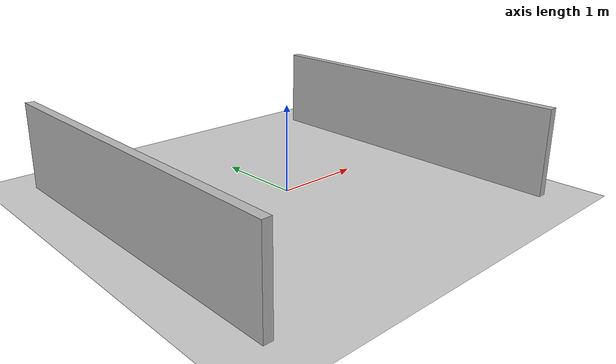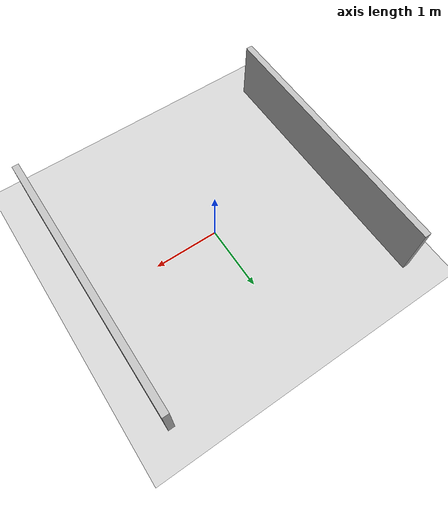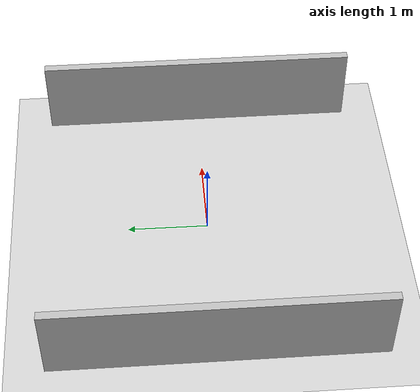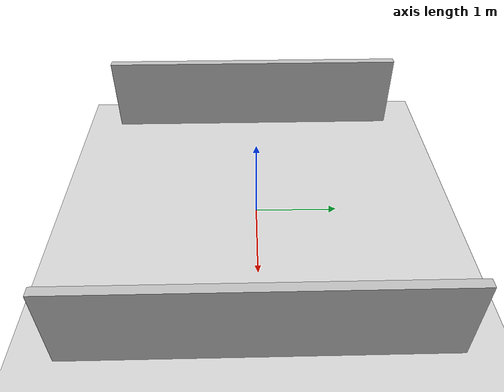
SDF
<?xml version="1.0" ?>
<sdf version="1.6">
  <world name="amr_world">

    <!-- Ground -->
    <model name="ground">
      <static>true</static>

      <link name="link">

        <collision name="collision">
          <geometry>
            <plane>
              <normal>0 0 1</normal>
              <size>100 100</size>
            </plane>
          </geometry>
        </collision>

        <visual name="visual">
          <geometry>
            <plane>
              <normal>0 0 1</normal>
              <size>100 100</size>
            </plane>
          </geometry>
        </visual>

      </link>
    </model>

    <!-- Sun -->
    <light name="sun" type="directional">
      <cast_shadows>true</cast_shadows>
      <pose>0 0 10 0 0 0</pose>

      <diffuse>1 1 1 1</diffuse>
      <specular>0.2 0.2 0.2 1</specular>

      <direction>-0.5 0.5 -1</direction>
    </light>

    <!-- Wall 1 -->
    <model name="wall_1">
      <static>true</static>
      <pose>2 0 0.5 0 0 0</pose>

      <link name="link">

        <collision name="collision">
          <geometry>
            <box>
              <size>0.1 4.0 1.0</size>
            </box>
          </geometry>
        </collision>

        <visual name="visual">
          <geometry>
            <box>
              <size>0.1 4.0 1.0</size>
            </box>
          </geometry>
        </visual>

      </link>
    </model>

    <!-- Wall 2 -->
    <model name="wall_2">
      <static>true</static>
      <pose>-2 0 0.5 0 0 0</pose>

      <link name="link">

        <collision name="collision">
          <geometry>
            <box>
              <size>0.1 4.0 1.0</size>
            </box>
          </geometry>
        </collision>

        <visual name="visual">
          <geometry>
            <box>
              <size>0.1 4.0 1.0</size>
            </box>
          </geometry>
        </visual>

      </link>
    </model>

  </world>
</sdf>
